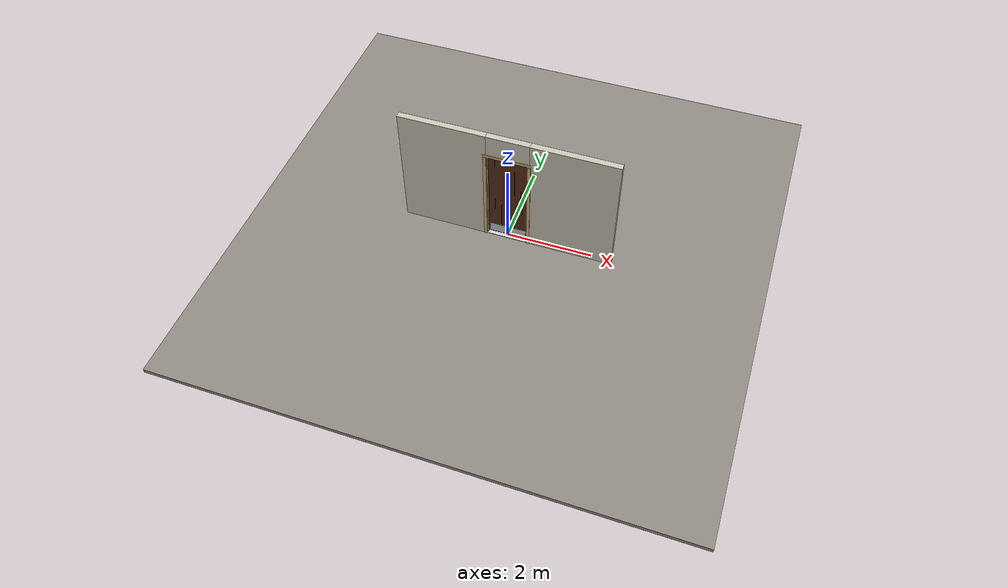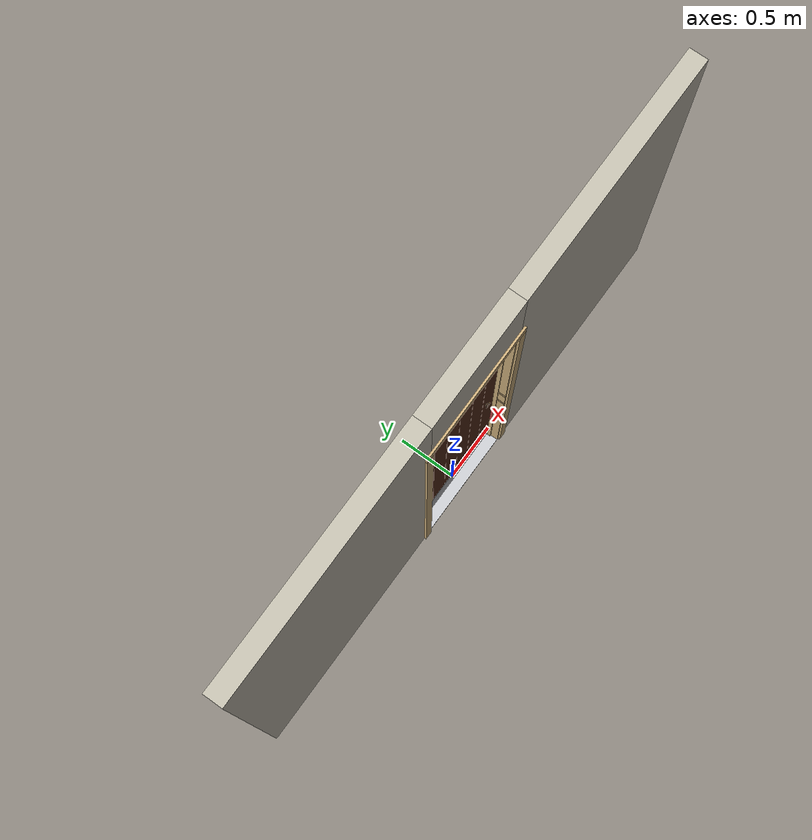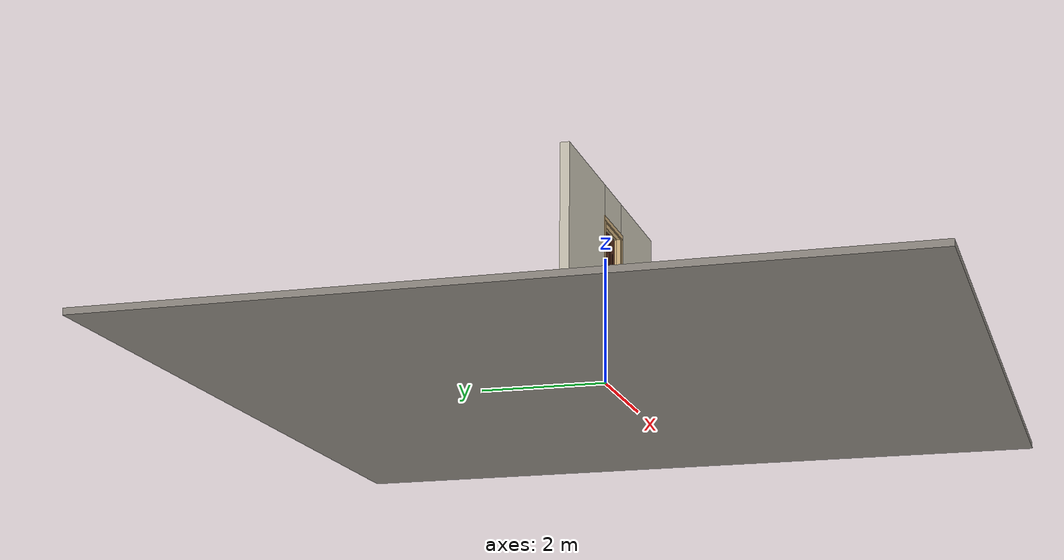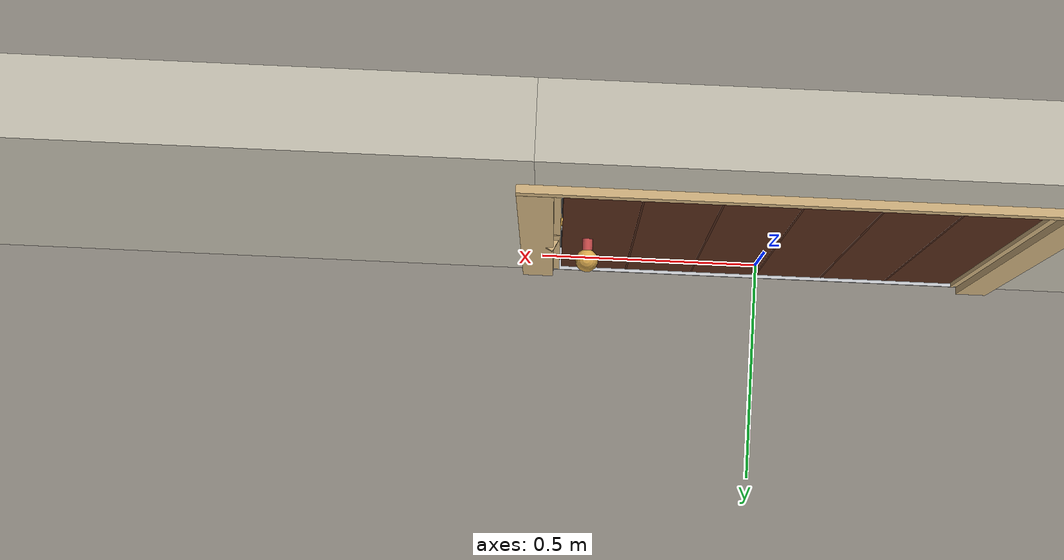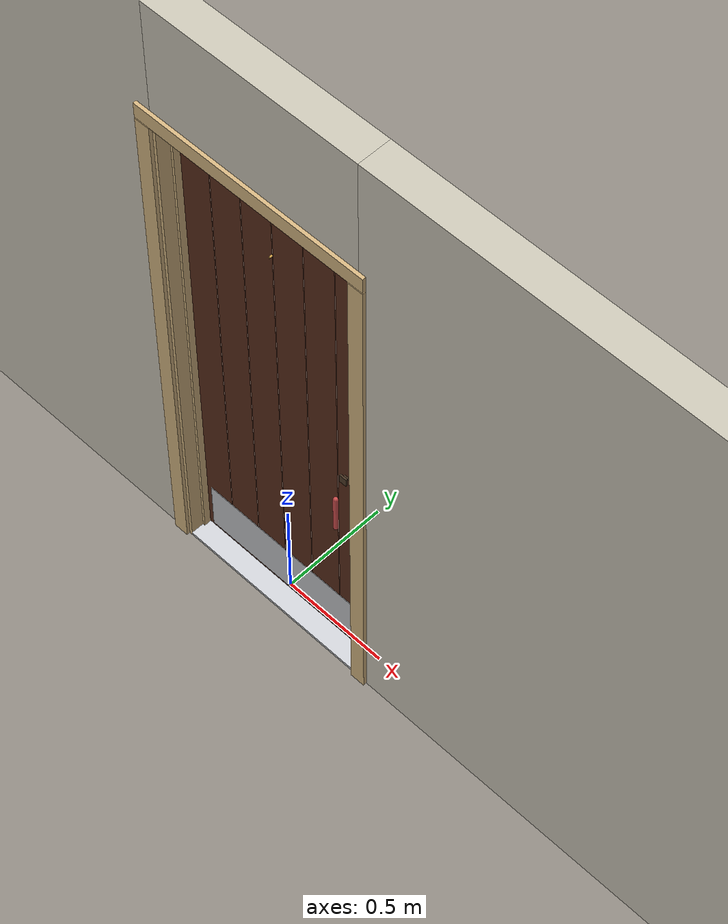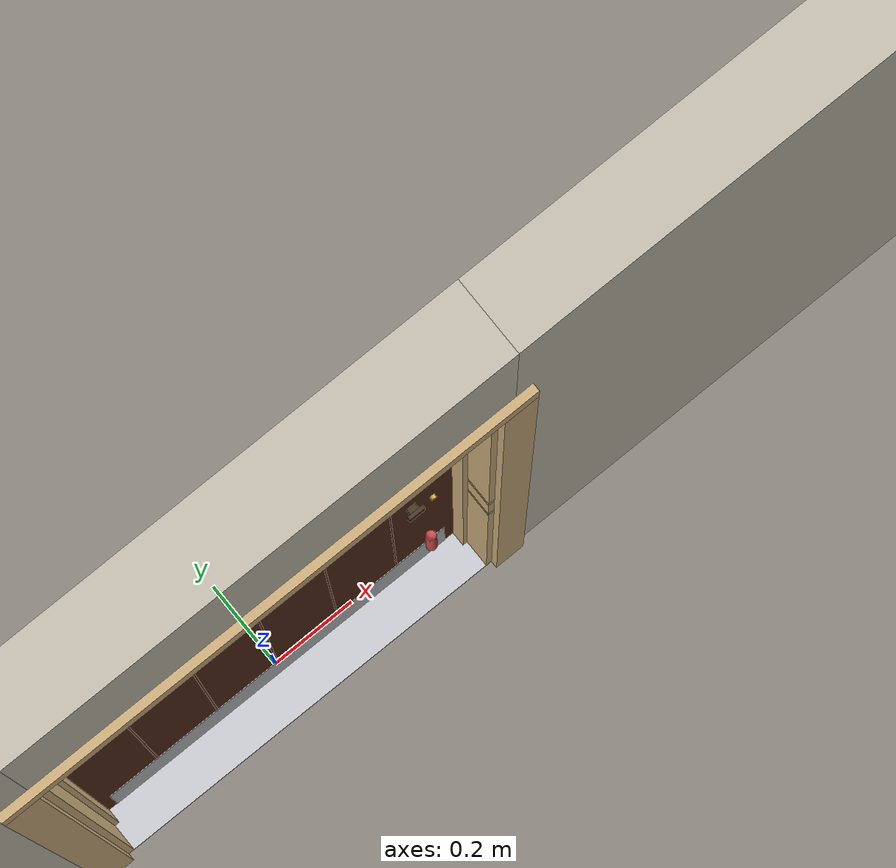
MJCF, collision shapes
<?xml version="1.0" ?>
<mujoco model="db0599_swing_single_full">
  <compiler angle="radian" meshdir="../../hardware" texturedir="../../textures" autolimits="true" inertiafromgeom="false"/>
  <option timestep="0.002" integrator="implicitfast" cone="elliptic" impratio="10" noslip_iterations="3">
    <flag multiccd="enable"/>
  </option>
  <size memory="16M"/>
  <default>
    <geom condim="4" solref="0.005 1" solimp="0.95 0.99 0.001"/>
    <joint solreflimit="0.005 1" solimplimit="0.95 0.99 0.001"/>
    <tendon solreflimit="0.005 1"/>
    <equality solref="0.002 1"/>
  </default>
  <visual>
    <headlight ambient="0.4 0.4 0.4" diffuse="0.7 0.7 0.7" specular="0.2 0.2 0.2"/>
    <quality shadowsize="4096"/>
    <map znear="0.01" zfar="60"/>
  </visual>
  <asset>
    <mesh name="cyl_face_e9e5036966" file="cyl_face_e9e5036966.obj"/>
    <mesh name="handleset_beb5526ad2" file="handleset_beb5526ad2.obj"/>
    <mesh name="hinge_2af0f4d6ca" file="hinge_2af0f4d6ca.obj"/>
    <mesh name="hinge_jamb_c0c0a62ada" file="hinge_jamb_c0c0a62ada.obj"/>
    <mesh name="knob_d1888f6f03" file="knob_d1888f6f03.obj"/>
    <mesh name="wreath_86a3f1bf8b" file="wreath_86a3f1bf8b.obj"/>
    <material name="mat_floor" rgba="0.55 0.53 0.5 1" specular="0.2" shininess="0.15" reflectance="0"/>
    <material name="mat_wall" rgba="0.78 0.76 0.7 1" specular="0.2" shininess="0.1" reflectance="0"/>
    <material name="mat_leaf" rgba="0.335 0.17 0.101 1" specular="0.2" shininess="0.55" reflectance="0"/>
    <material name="mat_leaf_brace" rgba="0.302 0.153 0.091 1" specular="0.2" shininess="0.2" reflectance="0"/>
    <material name="mat_hinge" rgba="0.65 0.66 0.68 1" specular="0.74" shininess="0.5" reflectance="0.36"/>
    <material name="mat_op_bronze" rgba="0.3 0.22 0.15 1" specular="0.74" shininess="0.5" reflectance="0.36"/>
    <material name="mat_op_brass" rgba="0.85 0.66 0.3 1" specular="0.8" shininess="0.75" reflectance="0.4"/>
    <material name="mat_trim" rgba="0.85 0.66 0.3 1" specular="0.8" shininess="0.75" reflectance="0.4"/>
    <material name="mat_bolt" rgba="0.75 0.76 0.77 1" specular="0.8" shininess="0.65" reflectance="0.4"/>
    <material name="mat_deadbolt" rgba="0.85 0.66 0.3 1" specular="0.8" shininess="0.75" reflectance="0.4"/>
    <material name="mat_frame" rgba="0.82 0.7 0.5 1" specular="0.2" shininess="0.45" reflectance="0"/>
    <material name="mat_seal" rgba="0.1 0.1 0.1 1" specular="0.2" shininess="0.1" reflectance="0"/>
    <material name="mat_threshold" rgba="0.8 0.81 0.83 1" specular="0.8" shininess="0.6" reflectance="0.4"/>
    <material name="mat_kick" rgba="0.75 0.76 0.77 1" specular="0.8" shininess="0.65" reflectance="0.4"/>
    <material name="mat_wreath" rgba="0.12 0.3 0.12 1" specular="0.2" shininess="0.05" reflectance="0"/>
    <material name="mat_wreath_hook" rgba="0.85 0.66 0.3 1" specular="0.8" shininess="0.75" reflectance="0.4"/>
    <material name="mat_drip" rgba="0.8 0.81 0.83 1" specular="0.8" shininess="0.6" reflectance="0.4"/>
    <texture name="skybox" type="skybox" builtin="gradient" rgb1="0.6 0.7 0.85" rgb2="0.9 0.92 0.95" width="256" height="256"/>
  </asset>
  <worldbody>
    <light name="sun" pos="1.5 -2.5 4" dir="-0.3 0.5 -0.8" directional="true" diffuse="0.8 0.8 0.8" specular="0.3 0.3 0.3" castshadow="true"/>
    <light name="fill" pos="-1.5 2.5 3" dir="0.3 -0.5 -0.7" directional="true" diffuse="0.35 0.35 0.4" castshadow="false"/>
    <camera name="robot_view" pos="0 -2.966312 2.043887" xyaxes="1 0 0 0 0.26963 0.962964" fovy="52"/>
    <camera name="far_view" pos="0 2.879313 2.043887" xyaxes="-1 0 0 0 -0.26963 0.962964" fovy="52"/>
    <camera name="iso" pos="2.221337 -2.498663 2.511538" xyaxes="0.741536 0.670913 0 -0.242917 0.268487 0.932151" fovy="46"/>
    <camera name="detail_handle" pos="0.5315 -0.882 1.236" xyaxes="0.97561 0.219512 0 -0.070934 0.315262 0.94635" fovy="38"/>
    <geom name="floor" type="box" size="6 6 0.05" pos="0 0 -0.05" material="mat_floor" group="0" contype="1" conaffinity="1" friction="0.8 0.005 0.0001" density="2400"/>
    <geom name="wall_left" type="box" size="1.01025 0.0725 1.5255" pos="-1.48975 -0.0435 1.5255" material="mat_wall" group="0" contype="1" conaffinity="1" friction="0.6 0.005 0.0001" density="800"/>
    <geom name="wall_right" type="box" size="0.99525 0.0725 1.5255" pos="1.50475 -0.0435 1.5255" material="mat_wall" group="0" contype="1" conaffinity="1" friction="0.6 0.005 0.0001" density="800"/>
    <geom name="wall_header" type="box" size="0.4945 0.0725 0.2755" pos="0.015 -0.0435 2.7755" material="mat_wall" group="0" contype="1" conaffinity="1" friction="0.6 0.005 0.0001" density="800"/>
    <geom name="hinge_0_jamb" type="mesh" mesh="hinge_jamb_c0c0a62ada" pos="-0.4575 0.029 0.267" quat="0 1 0 0" material="mat_hinge" group="1" contype="0" conaffinity="0" density="7850"/>
    <geom name="hinge_1_jamb" type="mesh" mesh="hinge_jamb_c0c0a62ada" pos="-0.4575 0.029 0.933667" quat="0 1 0 0" material="mat_hinge" group="1" contype="0" conaffinity="0" density="7850"/>
    <geom name="hinge_2_jamb" type="mesh" mesh="hinge_jamb_c0c0a62ada" pos="-0.4575 0.029 1.600333" quat="0 1 0 0" material="mat_hinge" group="1" contype="0" conaffinity="0" density="7850"/>
    <geom name="hinge_3_jamb" type="mesh" mesh="hinge_jamb_c0c0a62ada" pos="-0.4575 0.029 2.267" quat="0 1 0 0" material="mat_hinge" group="1" contype="0" conaffinity="0" density="7850"/>
    <geom name="leaf_deadbolt_strike_b" type="box" size="0.0155 0.003 0.0005" pos="0.46 0 1.1725" quat="-0.5 -0.5 0.5 0.5" material="mat_deadbolt" group="1" contype="0" conaffinity="0" density="7800"/>
    <geom name="leaf_deadbolt_strike_l" type="box" size="0.003 0.0155 0.0005" pos="0.46 0.0125 1.191" quat="-0.5 -0.5 0.5 0.5" material="mat_deadbolt" group="1" contype="0" conaffinity="0" density="7800"/>
    <geom name="leaf_deadbolt_strike_t" type="box" size="0.0155 0.003 0.0005" pos="0.46 0 1.2095" quat="-0.5 -0.5 0.5 0.5" material="mat_deadbolt" group="1" contype="0" conaffinity="0" density="7800"/>
    <geom name="leaf_deadbolt_strike_r" type="box" size="0.003 0.0155 0.0005" pos="0.46 -0.0125 1.191" quat="-0.5 -0.5 0.5 0.5" material="mat_deadbolt" group="1" contype="0" conaffinity="0" density="7800"/>
    <geom name="jamb_hinge" type="box" size="0.0095 0.0725 1.2255" pos="-0.47 -0.0435 1.2255" material="mat_frame" group="0" contype="1" conaffinity="1" friction="0.6 0.005 0.0001" density="400"/>
    <geom name="strike_1016_wall_n" type="box" size="0.0245 0.05475 0.015" pos="0.485 -0.06125 1.016" material="mat_frame" group="0" contype="1" conaffinity="1" friction="0.6 0.005 0.0001" density="400"/>
    <geom name="strike_1016_wall_p" type="box" size="0.0245 0.008 0.015" pos="0.485 0.0145 1.016" material="mat_frame" group="0" contype="1" conaffinity="1" friction="0.6 0.005 0.0001" density="400"/>
    <geom name="strike_1016_ramp" type="box" size="0.0245 0.016771 0.015" pos="0.489913 0.026543 1.016" quat="0.973249 0 0 -0.229753" material="mat_frame" group="0" contype="1" conaffinity="1" friction="0.12 0.005 0.0001" density="400"/>
    <geom name="strike_1016_back" type="box" size="0.0155 0.0065 0.015" pos="0.494 0 1.016" material="mat_frame" group="0" contype="1" conaffinity="1" friction="0.6 0.005 0.0001" density="400"/>
    <geom name="strike_1191_wall_n" type="box" size="0.0245 0.05325 0.0155" pos="0.485 -0.06275 1.191" material="mat_frame" group="0" contype="1" conaffinity="1" friction="0.6 0.005 0.0001" density="400"/>
    <geom name="strike_1191_wall_p" type="box" size="0.0245 0.00975 0.0155" pos="0.485 0.01925 1.191" material="mat_frame" group="0" contype="1" conaffinity="1" friction="0.6 0.005 0.0001" density="400"/>
    <geom name="strike_1191_back" type="box" size="0.0098 0.0095 0.0155" pos="0.4997 0 1.191" material="mat_frame" group="0" contype="1" conaffinity="1" friction="0.6 0.005 0.0001" density="400"/>
    <geom name="jamb_strike_0" type="box" size="0.0245 0.0725 0.5005" pos="0.485 -0.0435 0.5005" material="mat_frame" group="0" contype="1" conaffinity="1" friction="0.6 0.005 0.0001" density="400"/>
    <geom name="jamb_strike_1" type="box" size="0.0245 0.0725 0.07225" pos="0.485 -0.0435 1.10325" material="mat_frame" group="0" contype="1" conaffinity="1" friction="0.6 0.005 0.0001" density="400"/>
    <geom name="jamb_strike_2" type="box" size="0.0245 0.0725 0.62225" pos="0.485 -0.0435 1.82875" material="mat_frame" group="0" contype="1" conaffinity="1" friction="0.6 0.005 0.0001" density="400"/>
    <geom name="jamb_head" type="box" size="0.4945 0.0725 0.0095" pos="0.015 -0.0435 2.4605" material="mat_frame" group="0" contype="1" conaffinity="1" friction="0.6 0.005 0.0001" density="400"/>
    <geom name="head_stud" type="box" size="0.4945 0.0725 0.015" pos="0.015 -0.0435 2.485" material="mat_wall" group="0" contype="1" conaffinity="1" friction="0.6 0.005 0.0001" density="500"/>
    <geom name="stop_hinge" type="box" size="0.0055 0.016 1.2255" pos="-0.455 -0.0385 1.2255" material="mat_frame" group="0" contype="1" conaffinity="1" friction="0.6 0.005 0.0001" density="400"/>
    <geom name="stop_strike" type="box" size="0.0055 0.016 1.2255" pos="0.455 -0.0385 1.2255" material="mat_frame" group="0" contype="1" conaffinity="1" friction="0.6 0.005 0.0001" density="400"/>
    <geom name="stop_head" type="box" size="0.4605 0.016 0.0055" pos="0 -0.0385 2.4455" material="mat_frame" group="0" contype="1" conaffinity="1" friction="0.6 0.005 0.0001" density="400"/>
    <geom name="seal_hinge" type="box" size="0.004 0.0015 1.2255" pos="-0.4575 -0.0235 1.2255" material="mat_seal" group="1" contype="0" conaffinity="0" density="1100"/>
    <geom name="seal_strike" type="box" size="0.004 0.0015 1.2255" pos="0.4575 -0.0235 1.2255" material="mat_seal" group="1" contype="0" conaffinity="0" density="1100"/>
    <geom name="seal_head" type="box" size="0.4405 0.0015 0.008" pos="0 -0.0235 2.439" material="mat_seal" group="1" contype="0" conaffinity="0" density="1100"/>
    <geom name="casing_l_n" type="box" size="0.035 0.008 1.235" pos="-0.5095 -0.124 1.2255" material="mat_frame" group="2" contype="0" conaffinity="0" density="400"/>
    <geom name="casing_r_n" type="box" size="0.035 0.008 1.235" pos="0.5095 -0.124 1.2255" material="mat_frame" group="2" contype="0" conaffinity="0" density="400"/>
    <geom name="casing_h_n" type="box" size="0.5445 0.008 0.035" pos="0 -0.124 2.5" material="mat_frame" group="2" contype="0" conaffinity="0" density="400"/>
    <geom name="casing_l_p" type="box" size="0.035 0.008 1.235" pos="-0.5095 0.037 1.2255" material="mat_frame" group="2" contype="0" conaffinity="0" density="400"/>
    <geom name="casing_r_p" type="box" size="0.035 0.008 1.235" pos="0.5095 0.037 1.2255" material="mat_frame" group="2" contype="0" conaffinity="0" density="400"/>
    <geom name="casing_h_p" type="box" size="0.5445 0.008 0.035" pos="0 0.037 2.5" material="mat_frame" group="2" contype="0" conaffinity="0" density="400"/>
    <geom name="threshold" type="box" size="0.4795 0.0725 0.0065" pos="0 -0.0435 0.0065" material="mat_threshold" group="0" contype="1" conaffinity="1" friction="0.5 0.005 0.0001" density="2700"/>
    <geom name="weather_drip_cap" type="box" size="0.5105 0.03 0.008" pos="0 -0.03 2.496" material="mat_drip" group="2" contype="0" conaffinity="0" density="2700"/>
    <geom name="weather_drip_cap_bracket" type="box" size="0.15315 0.015 0.005" pos="0 0.0145 2.496" material="mat_drip" group="2" contype="0" conaffinity="0" density="7850"/>
    <site name="approach_point" pos="0 -1.5 0" quat="1 0 0 0" size="0.05" rgba="0.2 0.9 0.2 0.5" group="4"/>
    <site name="goal_point" pos="0 1.5 0" quat="1 0 0 0" size="0.05" rgba="0.2 0.9 0.2 0.5" group="4"/>
    <site name="door_plane_center" pos="0 0 1.2255" quat="1 0 0 0" size="0.02" rgba="0.2 0.9 0.2 0.5" group="4"/>
    <body name="leaf" pos="-0.4605 0 0">
      <inertial pos="0.461886 -0.003326 1.198177" mass="63.08754" quat="0.499664 0.502198 0.497792 -0.500336" diaginertia="4.468113346 32.371426266 36.796216952"/>
      <joint name="leaf_hinge" type="hinge" axis="0 0 1" pos="0.003 0.029 0" limited="true" range="0 1.745329" solreflimit="0.02 1" damping="0.357281" frictionloss="6.175079" armature="0.02"/>
      <geom name="leaf_slab" type="box" size="0.457 0.022 1.215" pos="0.46 0 1.232" material="mat_leaf" group="0" contype="1" conaffinity="1" friction="0.35 0.005 0.0001" density="1"/>
      <geom name="leaf_plank_gap_1" type="box" size="0.002 0.023 1.205" pos="0.155333 0 1.232" material="mat_leaf_brace" group="1" contype="0" conaffinity="0" density="1"/>
      <geom name="leaf_plank_gap_2" type="box" size="0.002 0.023 1.205" pos="0.307667 0 1.232" material="mat_leaf_brace" group="1" contype="0" conaffinity="0" density="1"/>
      <geom name="leaf_plank_gap_3" type="box" size="0.002 0.023 1.205" pos="0.46 0 1.232" material="mat_leaf_brace" group="1" contype="0" conaffinity="0" density="1"/>
      <geom name="leaf_plank_gap_4" type="box" size="0.002 0.023 1.205" pos="0.612333 0 1.232" material="mat_leaf_brace" group="1" contype="0" conaffinity="0" density="1"/>
      <geom name="leaf_plank_gap_5" type="box" size="0.002 0.023 1.205" pos="0.764667 0 1.232" material="mat_leaf_brace" group="1" contype="0" conaffinity="0" density="1"/>
      <geom name="hinge_0" type="mesh" mesh="hinge_2af0f4d6ca" pos="0.003 0.029 0.267" quat="0 1 0 0" material="mat_hinge" group="1" contype="0" conaffinity="0" density="7850"/>
      <geom name="hinge_1" type="mesh" mesh="hinge_2af0f4d6ca" pos="0.003 0.029 0.933667" quat="0 1 0 0" material="mat_hinge" group="1" contype="0" conaffinity="0" density="7850"/>
      <geom name="hinge_2" type="mesh" mesh="hinge_2af0f4d6ca" pos="0.003 0.029 1.600333" quat="0 1 0 0" material="mat_hinge" group="1" contype="0" conaffinity="0" density="7850"/>
      <geom name="hinge_3" type="mesh" mesh="hinge_2af0f4d6ca" pos="0.003 0.029 2.267" quat="0 1 0 0" material="mat_hinge" group="1" contype="0" conaffinity="0" density="7850"/>
      <geom name="leaf_handleset_n" type="mesh" mesh="handleset_beb5526ad2" pos="0.812 -0.022 0.956" quat="0.707107 0.707107 0 0" material="mat_op_bronze" group="1" contype="0" conaffinity="0" density="3000"/>
      <geom name="leaf_handleset_col_n" type="capsule" size="0.011 0.09" pos="0.812 -0.082 0.956" material="mat_op_bronze" group="3" contype="1" conaffinity="1" rgba="0.8 0.3 0.3 0.25" friction="0.7 0.01 0.0001" density="3000"/>
      <geom name="leaf_latch_bolt_faceplate" type="box" size="0.0006 0.011 0.025" pos="0.9164 0 1.016" material="mat_bolt" group="1" contype="0" conaffinity="0" density="8500"/>
      <geom name="leaf_deadbolt_faceplate" type="box" size="0.0006 0.014 0.0245" pos="0.9164 0 1.191" material="mat_deadbolt" group="1" contype="0" conaffinity="0" density="8500"/>
      <geom name="leaf_deadbolt_cylinder_face" type="mesh" mesh="cyl_face_e9e5036966" pos="0.852 -0.022 1.191" quat="0.707107 0.707107 0 0" material="mat_deadbolt" group="1" contype="0" conaffinity="0" density="7100"/>
      <geom name="kick_plate_n" type="box" size="0.427 0.0008 0.125" pos="0.46 -0.0228 0.152" material="mat_kick" group="2" contype="0" conaffinity="0" density="7900"/>
      <geom name="wreath" type="mesh" mesh="wreath_86a3f1bf8b" pos="0.46 -0.022 1.9124" quat="0.707107 0.707107 0 0" material="mat_wreath" group="2" contype="0" conaffinity="0" density="200"/>
      <geom name="wreath_hook" type="cylinder" size="0.004 0.008" pos="0.46 -0.029 2.1004" quat="0.707107 -0.707107 0 0" material="mat_wreath_hook" group="2" contype="0" conaffinity="0" density="8500"/>
      <site name="leaf_handleset_grip_n" pos="0.812 -0.082 0.956" quat="1 0 0 0" size="0.012" rgba="0.2 0.9 0.2 0.5" group="4"/>
      <site name="leaf_edge_mid" pos="0.917 0 1.215" quat="1 0 0 0" size="0.02" rgba="0.2 0.9 0.2 0.5" group="4"/>
      <body name="leaf_handle" pos="0.862 0 1.016">
        <inertial pos="0 0.052948 0" mass="0.60261" quat="0.5 0.5 0.5 0.5" diaginertia="0.000156736 0.000451151 0.000451151"/>
        <joint name="leaf_handle_hinge" type="hinge" axis="0 -1 0" limited="true" range="0 0.87" damping="0.142525" frictionloss="0.038" stiffness="0.5" springref="-0.5" armature="0.01"/>
        <geom name="leaf_handle_spindle" type="cylinder" size="0.006 0.03" pos="0 0 0" quat="0.707107 -0.707107 0 0" material="mat_op_brass" group="1" contype="0" conaffinity="0" density="7850"/>
        <geom name="leaf_handle_knob_p" type="mesh" mesh="knob_d1888f6f03" pos="0 0.022 0" quat="-0.707107 0.707107 0 0" material="mat_op_brass" group="1" contype="0" conaffinity="0" density="3000"/>
        <geom name="leaf_handle_knob_col_p" type="sphere" size="0.0243" pos="0 0.0685 0" material="mat_op_brass" group="0" contype="1" conaffinity="1" friction="0.9 0.01 0.0001" density="3000"/>
        <geom name="leaf_handle_knob_neck_p" type="cylinder" size="0.011 0.012" pos="0 0.034 0" quat="0.707107 -0.707107 0 0" material="mat_op_brass" group="3" contype="1" conaffinity="1" rgba="0.8 0.3 0.3 0.25" friction="0.6 0.005 0.0001" density="3000"/>
        <site name="leaf_handle_grip_p" pos="0 0.0685 0" quat="1 0 0 0" size="0.012" rgba="0.2 0.9 0.2 0.5" group="4"/>
      </body>
      <body name="leaf_thumbpiece" pos="0.812 -0.04 1.128">
        <inertial pos="0 0.004 0" mass="0.05184" quat="-0.5 0.5 0.5 0.5" diaginertia="0.000006981 0.000007488 0.000009124"/>
        <joint name="leaf_thumbpiece_hinge" type="hinge" axis="-1 0 0" pos="0 0 0.02" limited="true" range="0 0.35" damping="0.219407" frictionloss="0.058" stiffness="1.2" springref="-0.416667" armature="0.01"/>
        <geom name="leaf_thumbpiece_geom" type="box" size="0.018 0.004 0.02" pos="0 0 0" material="mat_op_bronze" group="0" contype="1" conaffinity="1" friction="0.6 0.005 0.0001" density="3000"/>
        <geom name="leaf_thumbpiece_boss" type="box" size="0.01 0.012 0.006" pos="0 0.012 0" material="mat_op_bronze" group="1" contype="0" conaffinity="0" density="3000"/>
        <site name="leaf_thumb_push" pos="0 -0.005 0.01" quat="1 0 0 0" size="0.01" rgba="0.2 0.9 0.2 0.5" group="4"/>
      </body>
      <body name="leaf_latch_bolt" pos="0.917 0 1.016">
        <inertial pos="-0.008 0 0" mass="0.027149" quat="0 0 0.707107 0.707107" diaginertia="0.000000328 0.000003943 0.000003943"/>
        <joint name="leaf_latch_bolt_slide" type="slide" axis="-1 0 0" limited="true" range="0 0.014" damping="2" frictionloss="0.3" stiffness="400" springref="-0.01" armature="0.1"/>
        <geom name="leaf_latch_bolt_capsule" type="capsule" size="0.005 0.017" pos="-0.008 0 0" quat="0.707107 0 0.707107 0" material="mat_bolt" group="0" contype="1" conaffinity="1" friction="0.2 0.005 0.0001" density="8500"/>
      </body>
      <body name="leaf_deadbolt" pos="0.917 0 1.191">
        <inertial pos="-0.0023 0 0" mass="0.18836" quat="0 0 0.707107 0.707107" diaginertia="0.000013829 0.000052194 0.000057986"/>
        <geom name="leaf_deadbolt_box" type="box" size="0.0277 0.008 0.0125" pos="-0.0023 0 0" material="mat_deadbolt" group="0" contype="1" conaffinity="1" friction="0.3 0.005 0.0001" density="8500"/>
      </body>
    </body>
  </worldbody>
  <tendon>
    <fixed name="leaf_thumb_coupling" limited="true" range="0 10">
      <joint joint="leaf_latch_bolt_slide" coef="1"/>
      <joint joint="leaf_thumbpiece_hinge" coef="-0.04375"/>
    </fixed>
    <fixed name="leaf_latch_bolt_coupling" limited="true" range="0 10">
      <joint joint="leaf_latch_bolt_slide" coef="1"/>
      <joint joint="leaf_handle_hinge" coef="-0.017284"/>
    </fixed>
  </tendon>
  <sensor>
    <jointpos name="leaf_hinge_pos" joint="leaf_hinge"/>
    <jointvel name="leaf_hinge_vel" joint="leaf_hinge"/>
    <jointpos name="leaf_handle_hinge_pos" joint="leaf_handle_hinge"/>
    <jointvel name="leaf_handle_hinge_vel" joint="leaf_handle_hinge"/>
    <jointpos name="leaf_thumbpiece_hinge_pos" joint="leaf_thumbpiece_hinge"/>
    <jointvel name="leaf_thumbpiece_hinge_vel" joint="leaf_thumbpiece_hinge"/>
    <jointpos name="leaf_latch_bolt_slide_pos" joint="leaf_latch_bolt_slide"/>
    <jointvel name="leaf_latch_bolt_slide_vel" joint="leaf_latch_bolt_slide"/>
  </sensor>
</mujoco>
